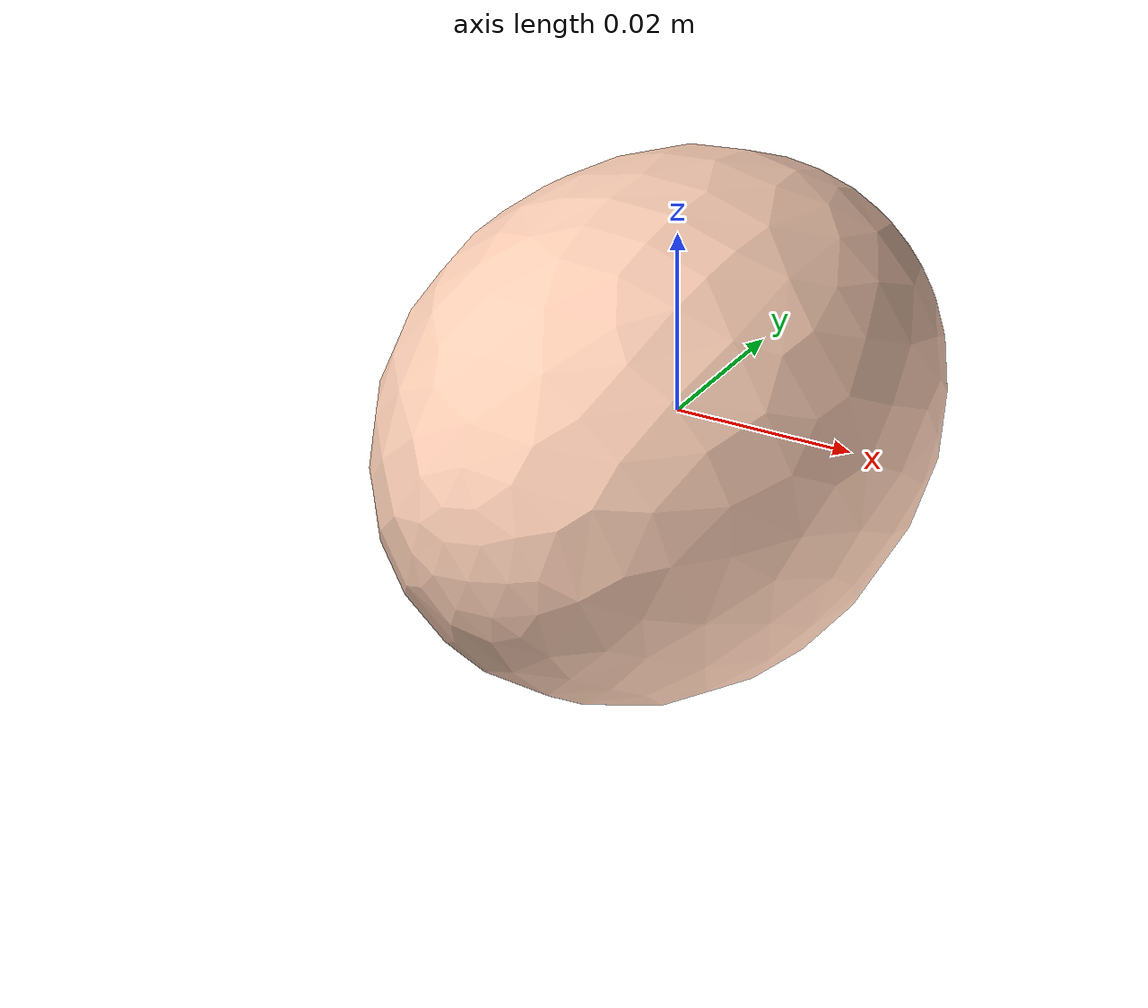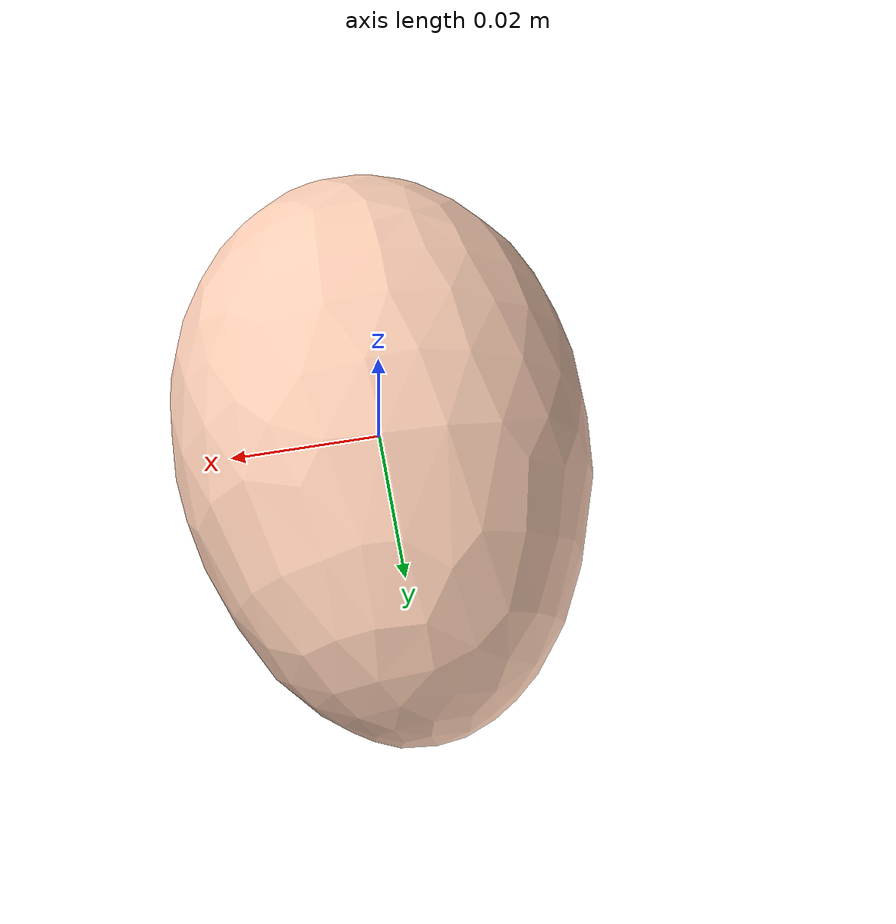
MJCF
<mujoco model="Egg_14">
  <compiler autolimits="true" boundmass="0.01" angle="radian"/>
  <default>
    <default class="/">
      <default class="__VISUAL_MJT__">
        <geom contype="0" conaffinity="0" group="0"/>
      </default>
      <default class="__STRUCTURAL_MJT__">
        <geom contype="8" conaffinity="15" group="4" friction="0.90000000000000002 0.90000000000000002 0.001" solref="0.025000000000000001 1" solimp="0.998 0.998 0.001"/>
      </default>
      <default class="__DYNAMIC_MJT__">
        <geom contype="1" conaffinity="15" group="4" friction="0.90000000000000002 0.90000000000000002 0.001" solref="0.025000000000000001 1" solimp="0.998 0.998 0.001"/>
      </default>
    </default>
  </default>
  <asset>
    <material name="material_Egg2_Mat" class="/" specular="0.5" shininess="0.5" rgba="1 0.81973430000000003 0.72058820000000001 1"/>
    <mesh name="Egg_14_egg_14" class="/" file="Egg_14_egg_14/Egg_14_egg_14.obj" scale="1 1 1"/>
  </asset>
  <worldbody>
    <body name="Egg_14">
      <joint name="Egg_14_free" class="/" type="free" pos="0 0 0" axis="0 0 1" stiffness="0" range="0 0" armature="0" damping="0.10000000000000001" frictionloss="0"/>
      <body name="Egg_14_egg_14" pos="-0.00014999999999999999 0 -0.0001" quat="1 0 0 0">
        <geom name="Egg_14_egg_14" class="__VISUAL_MJT__" type="mesh" material="material_Egg2_Mat" shellinertia="true" mesh="Egg_14_egg_14"/>
        <geom name="Egg_14_PrimitiveCollider_0" class="__DYNAMIC_MJT__" type="capsule" size="0.024978214874863625 0.012909075245261192" rgba="0 1 0 1" pos="-0 0 0" quat="0.70710678118654757 0.70710678118654746 0 0"/>
      </body>
    </body>
  </worldbody>
</mujoco>
